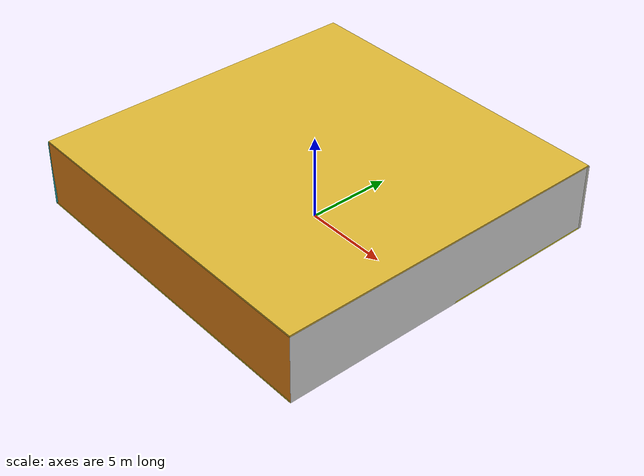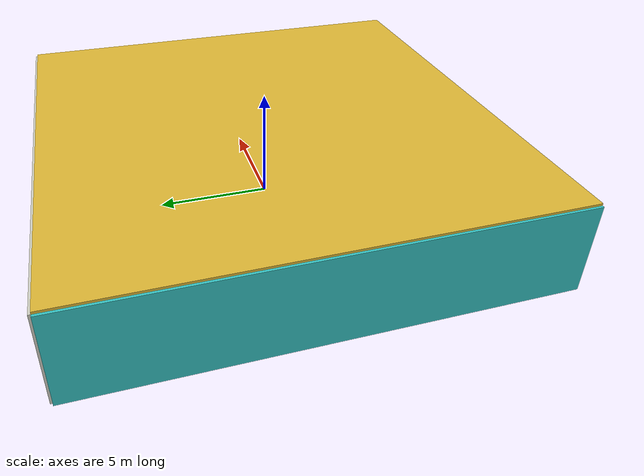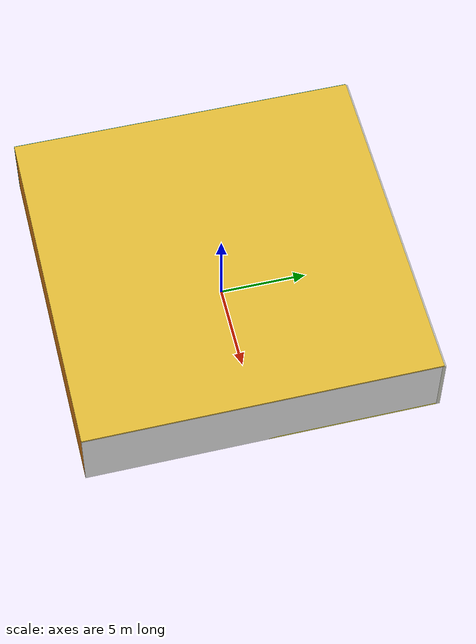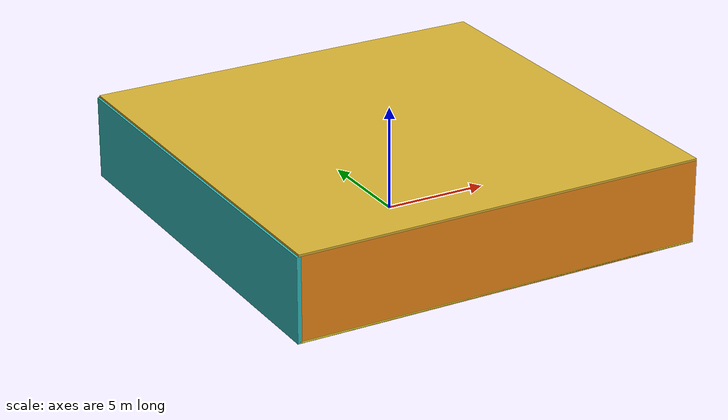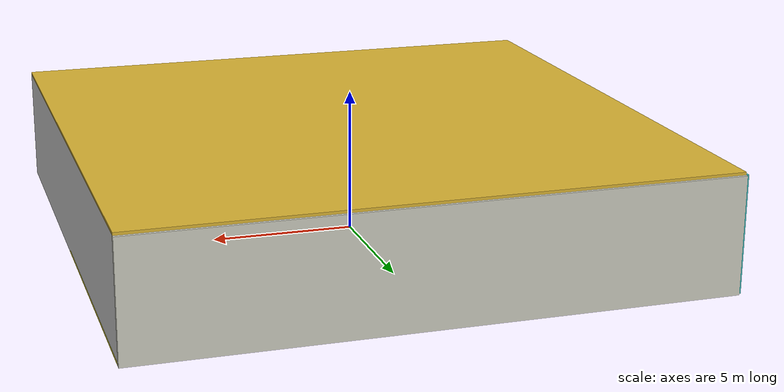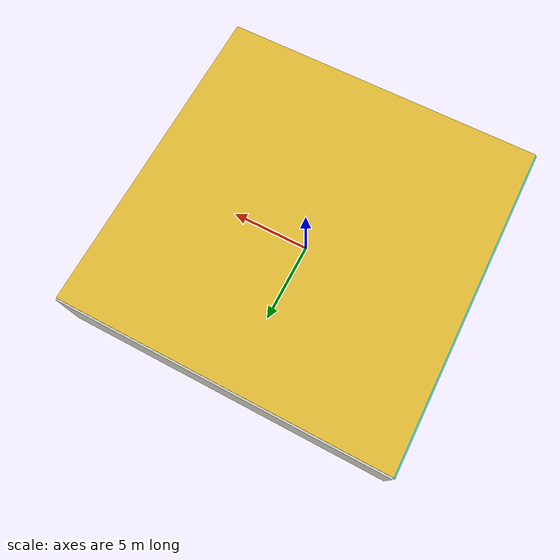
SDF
<sdf version="1.4">
 <world name="default">
  <physics type="ode">
   <max_step_size>0.001</max_step_size>
   <real_time_factor>1</real_time_factor>
   <real_time_update_rate>1000</real_time_update_rate>
   <gravity>0 0 -9.8</gravity>
  </physics>
  <scene><ambient>0.4 0.4 0.4 1</ambient><background>0.7 0.7 0.7 1</background><shadows>1</shadows></scene>
  <model name="Surrounding">
   <static>1</static>
   <link name="Ceiling">
    <collision name="Ceiling_Collision"><geometry><box><size>20 20 0.1</size></box></geometry></collision>
    <visual name="Ceiling_Visual">
     <geometry><box><size>20 20 0.1</size></box></geometry>
     <material>
      <script><uri>file://media/materials/scripts/gazebo.material</uri><name>Gazebo/Gold</name></script>
     </material>
    </visual>
    <pose>0 0 4.05 0 0 0</pose>
   </link>
   <link name="Wall_South">
    <collision name="Wall_South_Collision">
     <geometry><box><size>20 0 4</size></box></geometry>
     <pose>0 0 2 0 -0 0</pose>
    </collision>
    <visual name="Wall_South_Visual">
     <pose>0 0 2 0 -0 0</pose>
     <geometry><box><size>20 0 4</size></box></geometry>
     <material>
      <script><uri>file://media/materials/scripts/gazebo.material</uri><name>Gazebo/Orange</name></script>
     </material>
    </visual>
    <velocity_decay><linear>0</linear><angular>0</angular></velocity_decay>
    <pose>0 -10 0 0 -0 0</pose>
   </link>
   <link name="Wall_East">
    <collision name="Wall_21_Collision">
     <geometry><box><size>20 0 4</size></box></geometry>
     <pose>0 0 2 0 -0 0</pose>
    </collision>
    <visual name="Wall_21_Visual">
     <pose>0 0 2 0 -0 0</pose>
     <geometry><box><size>20 0 4</size></box></geometry>
     <material>
      <script><uri>file://media/materials/scripts/gazebo.material</uri><name>Gazebo/White</name></script>
     </material>
    </visual>
    <velocity_decay><linear>0</linear><angular>0</angular></velocity_decay>
    <pose>10 0 0 0 -0 1.5708</pose>
   </link>
   <link name="Wall_North">
    <collision name="Wall_22_Collision">
     <geometry><box><size>20 0.2 4</size></box></geometry>
     <pose>0 0 2 0 -0 0</pose>
    </collision>
    <visual name="Wall_22_Visual">
     <pose>0 0 2 0 -0 0</pose>
     <geometry><box><size>20 0.2 4</size></box></geometry>
     <material>
      <script><uri>file://media/materials/scripts/gazebo.material</uri><name>Gazebo/PaintedWall</name></script>
     </material>
    </visual>
    <velocity_decay><linear>0</linear><angular>0</angular></velocity_decay>
    <pose>0 10 0 0 -0 0</pose>
   </link>
   <link name="Wall_West">
    <collision name="Wall_23_Collision">
     <geometry><box><size>20 0.2 4</size></box></geometry>
     <pose>0 0 2 0 -0 0</pose>
    </collision>
    <visual name="Wall_23_Visual">
     <pose>0 0 2 0 -0 0</pose>
     <geometry><box><size>20 0.2 4</size></box></geometry>
     <material>
      <script><uri>file://media/materials/scripts/gazebo.material</uri><name>Gazebo/Turquoise</name></script>
     </material>
    </visual>
    <velocity_decay><linear>0</linear><angular>0</angular></velocity_decay>
    <pose>-10 0 0 0 0 -1.5708</pose>
   </link>
   <link name="Ground_link">
    <collision name="collision">
     <pose>0 0 .05 0 -0 0</pose>
     <geometry><box><size>20 20 0.1</size></box></geometry>
    </collision>
    <visual name="visual">
     <pose>0 0 .05 0 -0 0</pose>
     <geometry><box><size>20 20 0.1</size></box></geometry>
     <material>
      <script><uri>file://media/materials/scripts/gazebo.material</uri><name>Gazebo/Yellow</name></script>
     </material>
    </visual>
   </link>
   <static>1</static>
  </model>
  <spherical_coordinates>
   <surface_model>EARTH_WGS84</surface_model>
   <latitude_deg>0</latitude_deg>
   <longitude_deg>0</longitude_deg>
   <elevation>0</elevation>
   <heading_deg>0</heading_deg>
  </spherical_coordinates>
  <light name="lightball_0" type="diffuse">
   <diffuse>0.8 0.8 0.8 1</diffuse>
   <specular>0.2 0.2 0.2 1</specular>
   <attenuation>
    <range>100</range>
    <constant>0.7</constant>
    <linear>0.01</linear>
    <quadratic>0.001</quadratic>
   </attenuation>
   <direction>-0.5 0.1 -0.9</direction>
   <pose>-4.26448606553 -3.56347626353 3.07827267341 0 0 0</pose>
  </light>
  <light name="lightball_1" type="diffuse">
   <diffuse>0.8 0.8 0.8 1</diffuse>
   <specular>0.2 0.2 0.2 1</specular>
   <attenuation>
    <range>100</range>
    <constant>0.7</constant>
    <linear>0.01</linear>
    <quadratic>0.001</quadratic>
   </attenuation>
   <direction>-0.5 0.1 -0.9</direction>
   <pose>2.84255305091 2.9824034781 3.1263118306 0 0 0</pose>
  </light>
  <light name="lightball_2" type="diffuse">
   <diffuse>0.8 0.8 0.8 1</diffuse>
   <specular>0.2 0.2 0.2 1</specular>
   <attenuation>
    <range>100</range>
    <constant>0.7</constant>
    <linear>0.01</linear>
    <quadratic>0.001</quadratic>
   </attenuation>
   <direction>-0.5 0.1 -0.9</direction>
   <pose>-9.00114920388 3.51610830252 0.546296984935 0 0 0</pose>
  </light>
  <light name="lightball_3" type="diffuse">
   <diffuse>0.8 0.8 0.8 1</diffuse>
   <specular>0.2 0.2 0.2 1</specular>
   <attenuation>
    <range>100</range>
    <constant>0.7</constant>
    <linear>0.01</linear>
    <quadratic>0.001</quadratic>
   </attenuation>
   <direction>-0.5 0.1 -0.9</direction>
   <pose>-7.95256712094 9.56885102033 2.8828028491 0 0 0</pose>
  </light>
  <light name="lightball_4" type="diffuse">
   <diffuse>0.8 0.8 0.8 1</diffuse>
   <specular>0.2 0.2 0.2 1</specular>
   <attenuation>
    <range>100</range>
    <constant>0.7</constant>
    <linear>0.01</linear>
    <quadratic>0.001</quadratic>
   </attenuation>
   <direction>-0.5 0.1 -0.9</direction>
   <pose>6.26995755647 7.47123449392 2.50277594362 0 0 0</pose>
  </light>
  <light name="lightball_5" type="diffuse">
   <diffuse>0.8 0.8 0.8 1</diffuse>
   <specular>0.2 0.2 0.2 1</specular>
   <attenuation>
    <range>100</range>
    <constant>0.7</constant>
    <linear>0.01</linear>
    <quadratic>0.001</quadratic>
   </attenuation>
   <direction>-0.5 0.1 -0.9</direction>
   <pose>6.59562149092 4.85171559538 0.854001289069 0 0 0</pose>
  </light>
  <light name="lightball_6" type="diffuse">
   <diffuse>0.8 0.8 0.8 1</diffuse>
   <specular>0.2 0.2 0.2 1</specular>
   <attenuation>
    <range>100</range>
    <constant>0.7</constant>
    <linear>0.01</linear>
    <quadratic>0.001</quadratic>
   </attenuation>
   <direction>-0.5 0.1 -0.9</direction>
   <pose>-9.36123376908 -4.04915285252 2.96143980578 0 0 0</pose>
  </light>
  <light name="lightball_7" type="diffuse">
   <diffuse>0.8 0.8 0.8 1</diffuse>
   <specular>0.2 0.2 0.2 1</specular>
   <attenuation>
    <range>100</range>
    <constant>0.7</constant>
    <linear>0.01</linear>
    <quadratic>0.001</quadratic>
   </attenuation>
   <direction>-0.5 0.1 -0.9</direction>
   <pose>8.26101429256 -2.17089354782 2.6042012225 0 0 0</pose>
  </light>
  <light name="lightball_8" type="diffuse">
   <diffuse>0.8 0.8 0.8 1</diffuse>
   <specular>0.2 0.2 0.2 1</specular>
   <attenuation>
    <range>100</range>
    <constant>0.7</constant>
    <linear>0.01</linear>
    <quadratic>0.001</quadratic>
   </attenuation>
   <direction>-0.5 0.1 -0.9</direction>
   <pose>4.77357838969 1.25506034369 1.00322851595 0 0 0</pose>
  </light>
  <light name="lightball_9" type="diffuse">
   <diffuse>0.8 0.8 0.8 1</diffuse>
   <specular>0.2 0.2 0.2 1</specular>
   <attenuation>
    <range>100</range>
    <constant>0.7</constant>
    <linear>0.01</linear>
    <quadratic>0.001</quadratic>
   </attenuation>
   <direction>-0.5 0.1 -0.9</direction>
   <pose>-8.03064599322 -0.207234017758 2.90709812091 0 0 0</pose>
  </light>
  <light name="lightball_10" type="diffuse">
   <diffuse>0.8 0.8 0.8 1</diffuse>
   <specular>0.2 0.2 0.2 1</specular>
   <attenuation>
    <range>100</range>
    <constant>0.7</constant>
    <linear>0.01</linear>
    <quadratic>0.001</quadratic>
   </attenuation>
   <direction>-0.5 0.1 -0.9</direction>
   <pose>-0.702394297496 9.7482290961 2.55691301402 0 0 0</pose>
  </light>
  <light name="lightball_11" type="diffuse">
   <diffuse>0.8 0.8 0.8 1</diffuse>
   <specular>0.2 0.2 0.2 1</specular>
   <attenuation>
    <range>100</range>
    <constant>0.7</constant>
    <linear>0.01</linear>
    <quadratic>0.001</quadratic>
   </attenuation>
   <direction>-0.5 0.1 -0.9</direction>
   <pose>1.235993347 -2.08489209845 2.55052000478 0 0 0</pose>
  </light>
  <include>
   <uri>model://robocup_3Dsim_goal</uri>
   <pose>-8.26703217902 -1.35812633932 0 0 0 2.6704992624</pose>
  </include>
  <include>
   <uri>model://construction_cone</uri>
   <pose>5.06414817006 -6.9909379709 0 0 0 2.96002687314</pose>
  </include>
  <include><uri>model://cabinet</uri><pose>4.62932649377 7.03690701135 0 0 0 2.48365299031</pose></include>
  <include><uri>model://table</uri><pose>7.56686319791 -7.28632869198 0 0 0 1.33496549123</pose></include>
  <include>
   <uri>model://robocup_3Dsim_goal</uri>
   <pose>8.26206290205 -3.7628695397 0 0 0 0.297062187691</pose>
  </include>
 </world>
</sdf>

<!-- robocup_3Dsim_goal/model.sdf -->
<sdf version="1.5">
  <model name="robocup_3d_goal">
    <static>true</static>
    <link name="left_post">
      <pose>0 1.05 0.45 0 0 0</pose>
      <collision name="collision">
        <geometry>
          <cylinder>
            <radius>0.05</radius>
            <length>0.9</length>
          </cylinder>
        </geometry>
      </collision>
      <visual name="visual">
        <geometry>
          <cylinder>
            <radius>0.05</radius>
            <length>0.9</length>
          </cylinder>
        </geometry>
        <material>
          <script>
            <uri>file://media/materials/scripts/gazebo.material</uri>
            <name>Gazebo/ZincYellow</name>
          </script>
        </material>
      </visual>
    </link>
    <link name="left_support_horiz_lower">
      <pose>0.30 1.05 0.01 0 0 0</pose>
      <collision name="collision">
        <geometry>
          <box>
            <size>0.50 0.02 0.02</size>
          </box>
        </geometry>
      </collision>
      <visual name="visual">
        <geometry>
          <box>
            <size>0.50 0.02 0.02</size>
          </box>
        </geometry>
        <material>
          <script>
            <uri>file://media/materials/scripts/gazebo.material</uri>
            <name>Gazebo/White</name>
          </script>
        </material>
      </visual>
    </link>
    <link name="left_support_horiz_upper">
      <pose>0.30 1.05 0.79 0 0 0</pose>
      <collision name="collision">
        <geometry>
          <box>
            <size>0.50 0.02 0.02</size>
          </box>
        </geometry>
      </collision>
      <visual name="visual">
        <geometry>
          <box>
            <size>0.50 0.02 0.02</size>
          </box>
        </geometry>
        <material>
          <script>
            <uri>file://media/materials/scripts/gazebo.material</uri>
            <name>Gazebo/White</name>
          </script>
        </material>
      </visual>
    </link>
    <link name="left_support_vertical">
      <pose>0.56 1.05 0.4 0 1.5708 0</pose>
      <collision name="collision">
        <geometry>
          <box>
            <size>0.80 0.02 0.02</size>
          </box>
        </geometry>
      </collision>
      <visual name="visual">
        <geometry>
          <box>
            <size>0.80 0.02 0.02</size>
          </box>
        </geometry>
        <material>
          <script>
            <uri>file://media/materials/scripts/gazebo.material</uri>
            <name>Gazebo/White</name>
          </script>
        </material>
      </visual>
    </link>
    <link name="right_support_horiz_lower">
      <pose>0.30 -1.05 0.01 0 0 0</pose>
      <collision name="collision">
        <geometry>
          <box>
            <size>0.50 0.02 0.02</size>
          </box>
        </geometry>
      </collision>
      <visual name="visual">
        <geometry>
          <box>
            <size>0.50 0.02 0.02</size>
          </box>
        </geometry>
        <material>
          <script>
            <uri>file://media/materials/scripts/gazebo.material</uri>
            <name>Gazebo/White</name>
          </script>
        </material>
      </visual>
    </link>
    <link name="right_support_horiz_upper">
      <pose>0.30 -1.05 0.79 0 0 0</pose>
      <collision name="collision">
        <geometry>
          <box>
            <size>0.50 0.02 0.02</size>
          </box>
        </geometry>
      </collision>
      <visual name="visual">
        <geometry>
          <box>
            <size>0.50 0.02 0.02</size>
          </box>
        </geometry>
        <material>
          <script>
            <uri>file://media/materials/scripts/gazebo.material</uri>
            <name>Gazebo/White</name>
          </script>
        </material>
      </visual>
    </link>
    <link name="right_support_vertical">
      <pose>0.56 -1.05 0.4 0 1.5708 0</pose>
      <collision name="collision">
        <geometry>
          <box>
            <size>0.80 0.02 0.02</size>
          </box>
        </geometry>
      </collision>
      <visual name="visual">
        <geometry>
          <box>
            <size>0.80 0.02 0.02</size>
          </box>
        </geometry>
        <material>
          <script>
            <uri>file://media/materials/scripts/gazebo.material</uri>
            <name>Gazebo/White</name>
          </script>
        </material>
      </visual>
    </link>
    <link name="center_support_horiz_lower">
      <pose>0.56 0 0.01 0 1.5708 0</pose>
      <collision name="collision">
        <geometry>
          <box>
            <size>0.02 2.08 0.02</size>
          </box>
        </geometry>
      </collision>
      <visual name="visual">
        <geometry>
          <box>
            <size>0.02 2.08 0.02</size>
          </box>
        </geometry>
        <material>
          <script>
            <uri>file://media/materials/scripts/gazebo.material</uri>
            <name>Gazebo/White</name>
          </script>
        </material>
      </visual>
    </link>
    <link name="center_support_horiz_upper">
      <pose>0.56 0 0.79 0 1.5708 0</pose>
      <collision name="collision">
        <geometry>
          <box>
            <size>0.02 2.08 0.02</size>
          </box>
        </geometry>
      </collision>
      <visual name="visual">
        <geometry>
          <box>
            <size>0.02 2.08 0.02</size>
          </box>
        </geometry>
        <material>
          <script>
            <uri>file://media/materials/scripts/gazebo.material</uri>
            <name>Gazebo/White</name>
          </script>
        </material>
      </visual>
    </link>
    <link name="right_post">
      <pose>0 -1.05 0.45 0 0 0</pose>
      <collision name="collision">
        <geometry>
          <cylinder>
            <radius>0.05</radius>
            <length>0.9</length>
          </cylinder>
        </geometry>
      </collision>
      <visual name="visual">
        <geometry>
          <cylinder>
            <radius>0.05</radius>
            <length>0.9</length>
          </cylinder>
        </geometry>
        <material>
          <script>
            <uri>file://media/materials/scripts/gazebo.material</uri>
            <name>Gazebo/ZincYellow</name>
          </script>
        </material>
      </visual>
    </link>
    <link name="crossbar">
      <pose>0 0 0.85 1.57 1.57 0</pose>
      <collision name="collision">
        <geometry>
          <cylinder>
            <radius>0.05</radius>
            <length>2.0</length>
          </cylinder>
        </geometry>
      </collision>
      <visual name="visual">
        <geometry>
          <cylinder>
            <radius>0.05</radius>
            <length>2.0</length>
          </cylinder>
        </geometry>
        <material>
          <script>
            <uri>file://media/materials/scripts/gazebo.material</uri>
            <name>Gazebo/ZincYellow</name>
          </script>
        </material>
      </visual>
    </link>
    <link name="center_net">
      <pose>0.56 0 0.40 0 0 0</pose>
      <collision name="collision">
        <geometry>
          <box>
            <size>0.01 2.1 0.80</size>
          </box>
        </geometry>
      </collision>
      <visual name="visual">
        <geometry>
          <box>
            <size>0.01 2.1 0.80</size>
          </box>
        </geometry>
        <material>
          <script>
            <uri>model://../model_source/models/robocup09_spl_field/materials/scripts/</uri>
            <uri>model://../model_source/models/robocup09_spl_field/materials/textures/</uri>
            <name>RoboCup/Net</name>
          </script>
        </material>
      </visual>
    </link>
    <link name="left_net">
      <pose>0.30 1.05 0.40 0 0 0</pose>
      <collision name="collision">
        <geometry>
          <box>
            <size>0.50 0.01 0.76</size>
          </box>
        </geometry>
      </collision>
      <visual name="visual">
        <geometry>
          <box>
            <size>0.50 0.01 0.76</size>
          </box>
        </geometry>
        <material>
          <script>
            <uri>model://../model_source/models/robocup09_spl_field/materials/scripts/</uri>
            <uri>model://../model_source/models/robocup09_spl_field/materials/textures/</uri>
            <name>RoboCup/Net</name>
          </script>
        </material>
      </visual>
    </link>
    <link name="right_net">
      <pose>0.30 -1.05 0.40 0 0 0</pose>
      <collision name="collision">
        <geometry>
          <box>
            <size>0.50 0.01 0.76</size>
          </box>
        </geometry>
      </collision>
      <visual name="visual">
        <geometry>
          <box>
            <size>0.50 0.01 0.76</size>
          </box>
        </geometry>
        <material>
          <script>
            <uri>model://../model_source/models/robocup09_spl_field/materials/scripts/</uri>
            <uri>model://../model_source/models/robocup09_spl_field/materials/textures/</uri>
            <name>RoboCup/Net</name>
          </script>
        </material>
      </visual>
    </link>
  </model>
</sdf>

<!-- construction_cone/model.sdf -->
<sdf version="1.5">
  <model name="Construction Cone">
    <link name="link">
      <collision name="collision">
        <geometry>
          <mesh>
            <scale>10 10 10</scale>
            <uri>file://isr-testbed/construction_cone/meshes/construction_cone.dae</uri>
          </mesh>
        </geometry>
      </collision>
      <visual name="visual">
        <geometry>
          <mesh>
            <scale>10 10 10</scale>
            <uri>file://isr-testbed/construction_cone/meshes/construction_cone.dae</uri>
          </mesh>
        </geometry>
      </visual>
    </link>
  </model>
</sdf>

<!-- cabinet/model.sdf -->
<sdf version="1.5">
  <model name="cabinet">
    <static>true</static>
    <link name="cabinet_bottom_plate">
      <inertial>
        <pose>0 0 -1 0 0 0</pose>
        <inertia>
          <ixx>2.050000</ixx>
          <ixy>0</ixy>
          <ixz>0</ixz>
          <iyy>2.050000</iyy>
          <iyz>0</iyz>
          <izz>2.050000</izz>
        </inertia>
        <mass>25.000000</mass>
      </inertial>
      <collision name="cabinet_bottom_plate_geom">
        <pose>0 0 0.010000 0 0 0</pose>
        <geometry>
          <box>
            <size>0.450000 0.450000 0.020000</size>
          </box>
        </geometry>
      </collision>
      <visual name="cabinet_bottom_plate_geom_visual">
        <pose>0 0 0.010000 0 0 0</pose>
        <geometry>
          <box>
            <size>0.450000 0.450000 0.020000</size>
          </box>
        </geometry>
        <material>
          <script>
            <uri>model://media/materials/scripts/gazebo.material</uri>
            <name>Gazebo/Wood</name>
          </script>
        </material>
      </visual>
      <collision name="cabinet_bottom_plate_geom_cabinet_back_plate">
        <pose>0.235000 0 0.510000 0 0 0</pose>
        <geometry>
          <box>
            <size>0.020000 0.450000 1.020000</size>
          </box>
        </geometry>
      </collision>
      <visual name="cabinet_bottom_plate_geom_cabinet_back_plate_visual">
        <pose>0.235000 0 0.510000 0 0 0</pose>
        <geometry>
          <box>
            <size>0.020000 0.450000 1.020000</size>
          </box>
        </geometry>
        <material>
          <script>
            <uri>model://media/materials/scripts/gazebo.material</uri>
            <name>Gazebo/Wood</name>
          </script>
        </material>
      </visual>
      <collision name="cabinet_bottom_plate_geom_cabinet_left_plate">
        <pose>0 0.235000 0.510000 0 0 0</pose>
        <geometry>
          <box>
            <size>0.450000 0.020000 1.020000</size>
          </box>
        </geometry>
      </collision>
      <visual name="cabinet_bottom_plate_geom_cabinet_left_plate_visual">
        <pose>0 0.235000 0.510000 0 0 0</pose>
        <geometry>
          <box>
            <size>0.450000 0.020000 1.020000</size>
          </box>
        </geometry>
        <material>
          <script>
            <uri>model://media/materials/scripts/gazebo.material</uri>
            <name>Gazebo/Wood</name>
          </script>
        </material>
      </visual>
      <collision name="cabinet_bottom_plate_geom_cabinet_middle_plate">
        <pose>0 0 0.510000 0 0 0</pose>
        <geometry>
          <box>
            <size>0.450000 0.450000 0.020000</size>
          </box>
        </geometry>
      </collision>
      <visual name="cabinet_bottom_plate_geom_cabinet_middle_plate_visual">
        <pose>0 0 0.510000 0 0 0</pose>
        <geometry>
          <box>
            <size>0.450000 0.450000 0.020000</size>
          </box>
        </geometry>
        <material>
          <script>
            <uri>model://media/materials/scripts/gazebo.material</uri>
            <name>Gazebo/Wood</name>
          </script>
        </material>
      </visual>
      <collision name="cabinet_bottom_plate_geom_cabinet_right_plate">
        <pose>0 -0.235000 0.510000 0 0 0</pose>
        <geometry>
          <box>
            <size>0.450000 0.020000 1.020000</size>
          </box>
        </geometry>
      </collision>
      <visual name="cabinet_bottom_plate_geom_cabinet_right_plate_visual">
        <pose>0 -0.235000 0.510000 0 0 0</pose>
        <geometry>
          <box>
            <size>0.450000 0.020000 1.020000</size>
          </box>
        </geometry>
        <material>
          <script>
            <uri>model://media/materials/scripts/gazebo.material</uri>
            <name>Gazebo/Wood</name>
          </script>
        </material>
      </visual>
      <collision name="cabinet_bottom_plate_geom_cabinet_top_plate">
        <pose>0 0 1.010000 0 0 0</pose>
        <geometry>
          <box>
            <size>0.450000 0.450000 0.020000</size>
          </box>
        </geometry>
      </collision>
      <visual name="cabinet_bottom_plate_geom_cabinet_top_plate_visual">
        <pose>0 0 1.010000 0 0 0</pose>
        <geometry>
          <box>
            <size>0.450000 0.450000 0.020000</size>
          </box>
        </geometry>
        <material>
          <script>
            <uri>model://media/materials/scripts/gazebo.material</uri>
            <name>Gazebo/Wood</name>
          </script>
        </material>
      </visual>
    </link>
  </model>
</sdf>

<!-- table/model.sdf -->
<sdf version="1.5">
  <model name="table">
    <static>true</static>
    <link name="link">
      <collision name="surface">
        <pose>0 0 1.0 0 0 0</pose>
        <geometry>
          <box>
            <size>1.5 0.8 0.03</size>
          </box>
        </geometry>
        <surface>
          <friction>
            <ode>
              <mu>0.6</mu>
              <mu2>0.6</mu2>
            </ode>
          </friction>
        </surface>
      </collision>
      <visual name="visual1">
        <pose>0 0 1.0 0 0 0</pose>
        <geometry>
          <box>
            <size>1.5 0.8 0.03</size>
          </box>
        </geometry>
        <material>
          <script>
            <uri>model://media/materials/scripts/gazebo.material</uri>
            <name>Gazebo/Wood</name>
          </script>
        </material>
      </visual>
      <collision name="front_left_leg">
        <pose>0.68 0.38 0.5 0 0 0</pose>
        <geometry>
          <cylinder>
            <radius>0.02</radius>
            <length>1.0</length>
          </cylinder>
        </geometry>
      </collision>
      <visual name="front_left_leg">
        <pose>0.68 0.38 0.5 0 0 0</pose>
        <geometry>
          <cylinder>
            <radius>0.02</radius>
            <length>1.0</length>
          </cylinder>
        </geometry>
        <material>
          <script>
            <uri>model://media/materials/scripts/gazebo.material</uri>
            <name>Gazebo/Grey</name>
          </script>
        </material>
      </visual>
      <collision name="front_right_leg">
        <pose>0.68 -0.38 0.5 0 0 0</pose>
        <geometry>
          <cylinder>
            <radius>0.02</radius>
            <length>1.0</length>
          </cylinder>
        </geometry>
      </collision>
      <visual name="front_right_leg">
        <pose>0.68 -0.38 0.5 0 0 0</pose>
        <geometry>
          <cylinder>
            <radius>0.02</radius>
            <length>1.0</length>
          </cylinder>
        </geometry>
        <material>
          <script>
            <uri>model://media/materials/scripts/gazebo.material</uri>
            <name>Gazebo/Grey</name>
          </script>
        </material>
      </visual>
      <collision name="back_right_leg">
        <pose>-0.68 -0.38 0.5 0 0 0</pose>
        <geometry>
          <cylinder>
            <radius>0.02</radius>
            <length>1.0</length>
          </cylinder>
        </geometry>
      </collision>
      <visual name="back_right_leg">
        <pose>-0.68 -0.38 0.5 0 0 0</pose>
        <geometry>
          <cylinder>
            <radius>0.02</radius>
            <length>1.0</length>
          </cylinder>
        </geometry>
        <material>
          <script>
            <uri>model://media/materials/scripts/gazebo.material</uri>
            <name>Gazebo/Grey</name>
          </script>
        </material>
      </visual>
      <collision name="back_left_leg">
        <pose>-0.68 0.38 0.5 0 0 0</pose>
        <geometry>
          <cylinder>
            <radius>0.02</radius>
            <length>1.0</length>
          </cylinder>
        </geometry>
      </collision>
      <visual name="back_left_leg">
        <pose>-0.68 0.38 0.5 0 0 0</pose>
        <geometry>
          <cylinder>
            <radius>0.02</radius>
            <length>1.0</length>
          </cylinder>
        </geometry>
        <material>
          <script>
            <uri>model://media/materials/scripts/gazebo.material</uri>
            <name>Gazebo/Grey</name>
          </script>
        </material>
      </visual>
    </link>
  </model>
</sdf>
